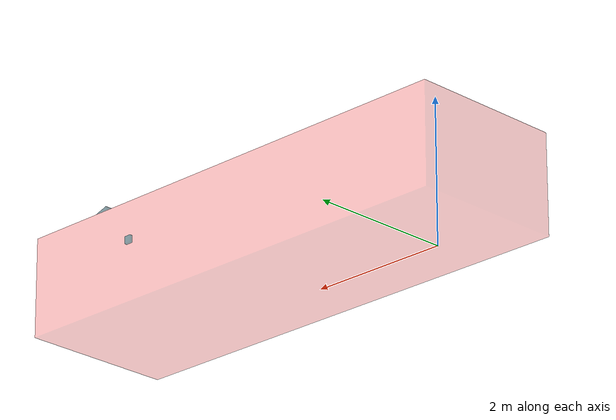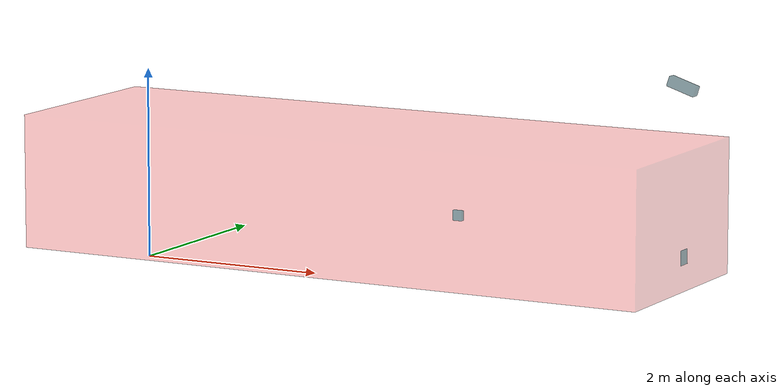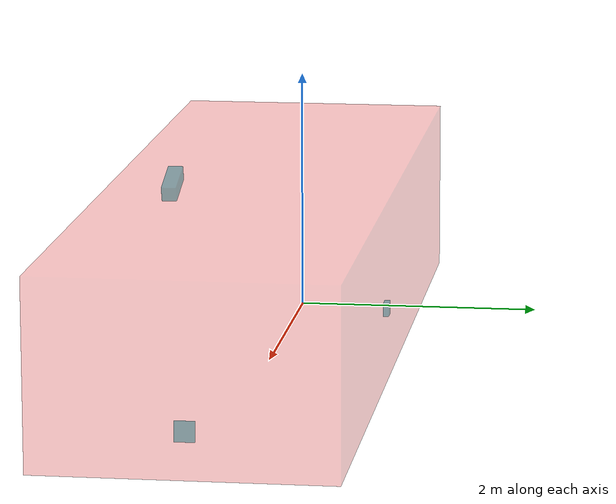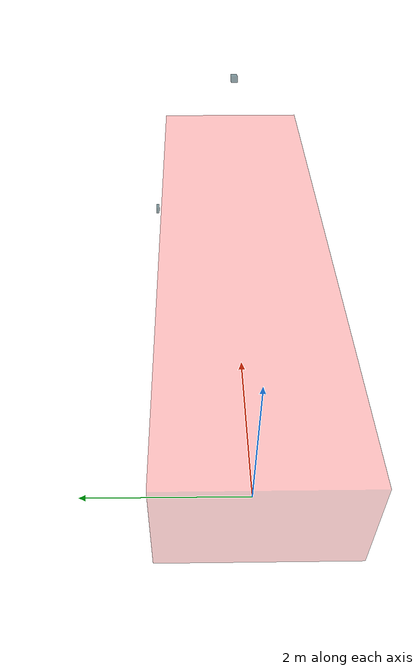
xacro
<?xml version="1.0"?>
<robot name="at" xmlns:xacro="http://ros.org/wiki/xacro">

<xacro:property name="robot" value="at" />
<xacro:property name="pi"    value="3.141592" />

<!-- AGV Base Footprint-->
<link name="${robot}_footprint">
    <visual>
        <origin xyz="0 0 0" rpy="0 0 0"/>
        <geometry>
            <box size="0.01 0.01 0.01"/>
        </geometry>
    </visual>
</link>

<!-- AGV Base Link-->
<link name="${robot}_base_link">
    <visual>
		<origin xyz="${3.5-0.84} 0 0.4" rpy="0 0 0"/>
        <geometry>
            <box size="7 2.2 1.4"/>
        </geometry>
        <material name="reddish">
            <color rgba="1 0.2 0.2 0.3"/>
        </material>
    </visual>
</link>
<joint name="${robot}_footprint_2_base_link" type="fixed" >
    <parent link="${robot}_footprint"/>
    <child link="${robot}_base_link"/>
    <origin xyz="0 0 0.5" rpy="0 0 0"/>
</joint>

<!-- Lidar Macro-->
<xacro:macro name="ibeo" params="parent suffix *origin">
    <link name="${suffix}">
        <visual>
            <origin xyz="-0.075 -0.075 -0.075" rpy="0 0 0"/>
            <geometry>
                <box size="0.15 0.15 0.15"/>
            </geometry>
            <material name="blue_navy">
                <color rgba="0.0 0.2 0.25 0.5"/>
            </material>
        </visual>
    </link>
    <joint name="${parent}_2_${suffix}" type="fixed" >
        <parent link="${parent}"/>
        <child link="${suffix}"/>
        <xacro:insert_block name="origin" />
    </joint>
</xacro:macro>

<!-- ibeo mounting points. Metric tape measurement + Mail from Peter(Volvo)-->
<xacro:ibeo parent="${robot}_base_link" suffix="${robot}_front_ibeo">
    <origin xyz="6.16 0.1 0.125" rpy="0 0 0"/>
</xacro:ibeo>

<!-- ibeo layers -->
<xacro:ibeo parent="${robot}_front_ibeo" suffix="${robot}_front_ibeo_layer0">
    <origin xyz="0 0 0" rpy="0 ${2.8*pi/180} 0"/>
</xacro:ibeo>
<xacro:ibeo parent="${robot}_front_ibeo" suffix="${robot}_front_ibeo_layer1">
    <origin xyz="0 0 0" rpy="0 ${2.0*pi/180} 0"/>
</xacro:ibeo>
<xacro:ibeo parent="${robot}_front_ibeo" suffix="${robot}_front_ibeo_layer2">
    <origin xyz="0 0 0" rpy="0 ${1.2*pi/180} 0"/>
</xacro:ibeo>
<xacro:ibeo parent="${robot}_front_ibeo" suffix="${robot}_front_ibeo_layer3">
    <origin xyz="0 0 0" rpy="0 ${0.4*pi/180} 0"/>
</xacro:ibeo>
<xacro:ibeo parent="${robot}_front_ibeo" suffix="${robot}_front_ibeo_layer4">
    <origin xyz="0 0 0" rpy="0 ${-0.4*pi/180} 0"/>
</xacro:ibeo>
<xacro:ibeo parent="${robot}_front_ibeo" suffix="${robot}_front_ibeo_layer5">
    <origin xyz="0 0 0" rpy="0 ${-1.2*pi/180} 0"/>
</xacro:ibeo>
<xacro:ibeo parent="${robot}_front_ibeo" suffix="${robot}_front_ibeo_layer6">
    <origin xyz="0 0 0" rpy="0 ${-2.0*pi/180} 0"/>
</xacro:ibeo>
<xacro:ibeo parent="${robot}_front_ibeo" suffix="${robot}_front_ibeo_layer7">
    <origin xyz="0 0 0" rpy="0 ${-2.8*pi/180} 0"/>
</xacro:ibeo>

<!-- webcam x=0, y=-0.14, z=2.27  , wrt ibeo footprint. Metric tape measurement-->
<link name="${robot}_webcam">
    <visual>
        <geometry>
            <box size="0.3 0.1 0.1"/>
        </geometry>
		<material name="blue_navy">
			<color rgba="0.0 0.2 0.25 0.5"/>
		</material>
    </visual>
</link>
<joint name="${robot}_ibeo_2_camera" type="fixed" >
    <parent link="${robot}_front_ibeo"/>
    <child link="${robot}_webcam"/>
	<origin xyz="0 -0.14 1.645" rpy="0 ${pi/10} 0"/> <!-- pitch value very approximated, not measured-->
</joint>

<!-- Left radar. Mail from Wilhelm (Volvo)-->
<link name="${robot}_radar_left">
    <visual>
        <geometry>
            <box size="0.04 0.1 0.1"/>
        </geometry>
		<material name="blue_navy">
			<color rgba="0.0 0.2 0.25 0.5"/>
		</material>
    </visual>
</link>
<joint name="${robot}_base_link_2_radar_left" type="fixed" >
    <parent link="${robot}_base_link"/>
    <child link="${robot}_radar_left"/>
	<origin xyz="${6.16+0.05-1.94} 1.2 0.5" rpy="0 0 ${pi/2}"/> <!-- xy wrt front plate. z TBC !-->
</joint>

<!-- Right radar. Mail from Wilhelm (Volvo)-->
<link name="${robot}_radar_right">
    <visual>
        <geometry>
            <box size="0.04 0.1 0.1"/>
        </geometry>
		<material name="blue_navy">
			<color rgba="0.0 0.2 0.25 0.5"/>
		</material>
    </visual>
</link>
<joint name="${robot}_base_link_2_radar_right" type="fixed" >
    <parent link="${robot}_base_link"/>
    <child link="${robot}_radar_right"/>
	<origin xyz="${6.16+0.05-1.94} -1.18 0.5" rpy="0 0 ${-pi/2}"/> <!-- xy wrt front plate. z TBC !-->
</joint>

</robot>
